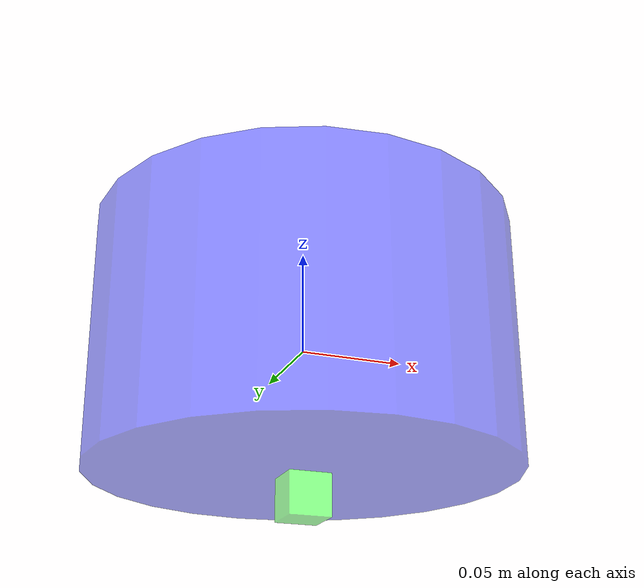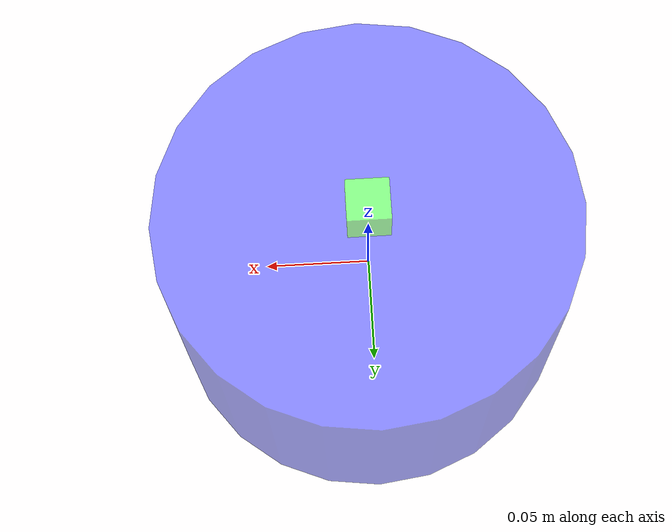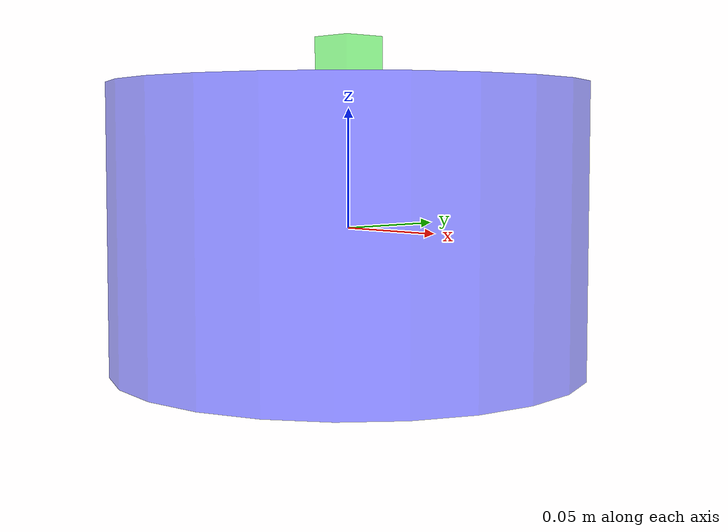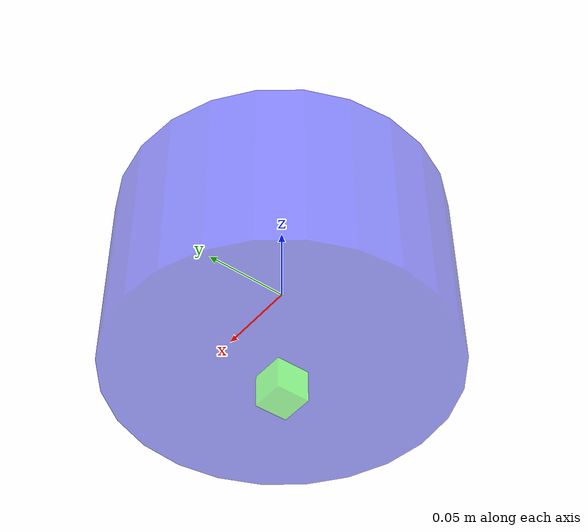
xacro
<?xml version="1.0"?>

<robot xmlns:xacro="http://www.ros.org/wiki/xacro"  name="first_robot">
        <material name="blue">
            <color rgba="0.1 0.1 1.0 0.5" />
        </material>
        <material name="green">
            <color rgba="0.1 1.0 0.1 0.5"/>
        </material>

    <xacro:macro name="base_link" params="length radius">
        <link name="base_link">
            <visual>
                <origin xyz="0 0 0" rpy="0 0 0"/>
                <geometry>
                    <cylinder length="${length}" radius="${radius}"/>
                </geometry>
                <material name="blue"/>
            </visual>
            <collision>
                <origin xyz="0 0 0" rpy="0 0 0"/>
                <geometry>
                    <cylinder length="${length}" radius="${radius}"/>
                </geometry>
            </collision>

            <inertial>
                <mass value="0.5"/>
                <inertia ixx="0.001" ixy="0" ixz="0" iyy="0.001" iyz="0" izz="0.001"/>
            </inertial>
        </link>
    </xacro:macro>

    <xacro:macro name="imu_link" params="imu_name xyz">
        <link name="${imu_name}_link">
            <visual>
                <origin xyz="${xyz}" rpy="0 0 0"/>
                <geometry>
                    <box size="0.02 0.02 0.02" />
                </geometry>
                <material name="green"/>
            </visual>
            <collision>
                <origin xyz="${xyz}" rpy="0 0 0"/>
                <geometry>
                    <box size="0.02 0.02 0.02" />
                </geometry>
            </collision>
            <inertial>
                <mass value="0.5"/>
                <inertia ixx="0.001" ixy="0" ixz="0" iyy="0.001" iyz="0" izz="0.001"/>
            </inertial>
        </link>
        <joint name="${imu_name}_joint" type="fixed">
            <parent link="base_link"/>
            <child link="${imu_name}_link"/>
            <origin xyz="0 0 0" rpy="0 0 0"/>
            <axis xyz="0 0 1" />
        </joint>
    </xacro:macro>

    <xacro:base_link length="0.12" radius="0.1"/>
    <xacro:imu_link imu_name="imu_up" xyz="0 0 0.07"/>
    <xacro:imu_link imu_name="imu_down" xyz="0 0 -0.07"/>
</robot>
